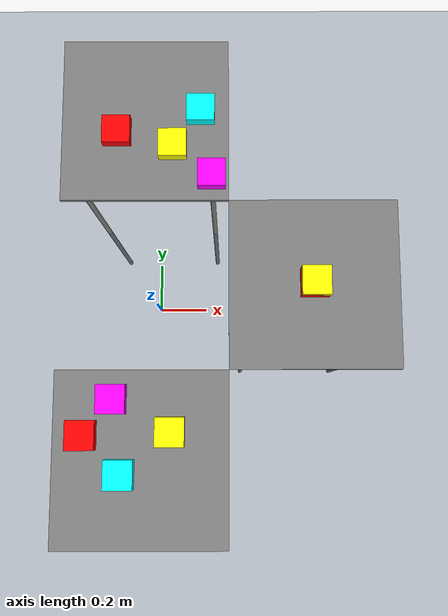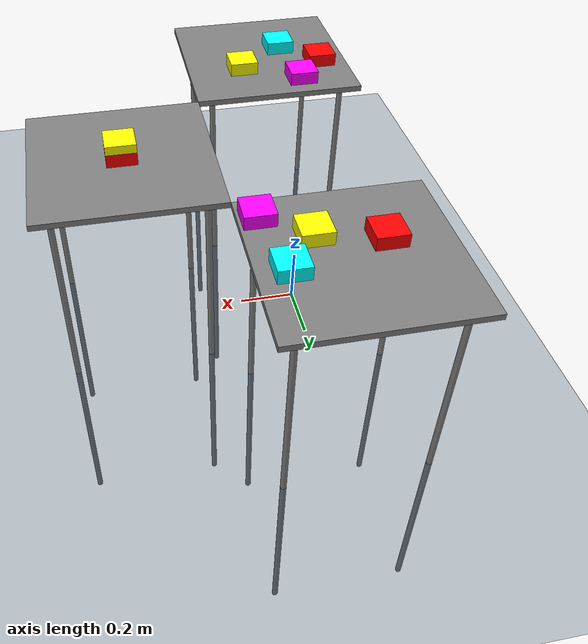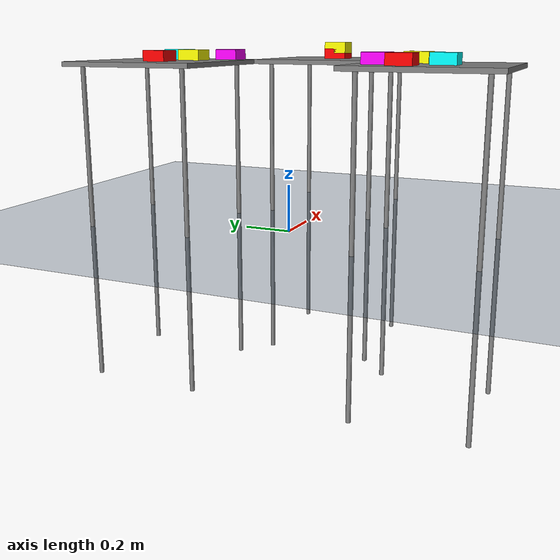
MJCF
<mujoco model="tableworld">
    <compiler eulerseq="XYZ"/>
    <statistic center="0.3 0 0.4" extent="0.8"/>

    <visual>
        <headlight diffuse="0.6 0.6 0.6" ambient="0.1 0.1 0.1" specular="0 0 0"/>
        <rgba haze="0.15 0.25 0.35 1"/>
        <global azimuth="120" elevation="-20"/>
    </visual>

    <asset>
        <texture type="skybox" builtin="gradient" rgb1="0.3 0.5 0.7" rgb2="0 0 0" width="512" height="3072"/>
        <texture type="2d" name="groundplane" builtin="checker" mark="edge" rgb1="0.2 0.3 0.4" rgb2="0.1 0.2 0.3"
                 markrgb="0.8 0.8 0.8" width="300" height="300"/>
        <material name="groundplane" texture="groundplane" texuniform="true" texrepeat="5 5" reflectance="0.2"/>

    </asset>

    <worldbody>
        <light pos="0 0 1.5" dir="0 0 -1" directional="true"/>
        <geom name="floor" pos="0.0 0.0 0.0" size="0 0 0.05" type="plane" material="groundplane"/>

        <body name="table_left" pos="0.0 -0.6 0">
            <geom name="table_left_top" type="box" size=".30 .30 .01" pos="0 0 .7"/>
            <geom name="table_left_leg_1" type="cylinder" size=".01 .7" pos=".24 -.24 -.0" euler="0 0 0"/>
            <geom name="table_left_leg_2" type="cylinder" size=".01 .7" pos=".24 .24 -.0" euler="0 0 0"/>
            <geom name="table_left_leg_3" type="cylinder" size=".01 .7" pos="-.24 -.24 -.0" euler="0 0 0"/>
            <geom name="table_left_leg_4" type="cylinder" size=".01 .7" pos="-.24 .24 -.0" euler="0 0 0"/>
        </body>

        <body name="table_right" pos="0 0.6 0">
            <geom name="table_right_top" type="box" size=".30 .30 .01" pos="0 0 .7"/>
            <geom name="table_right_leg_1" type="cylinder" size=".01 .7" pos=".24 -.24 -.0" euler="0 0 0"/>
            <geom name="table_right_leg_2" type="cylinder" size=".01 .7" pos=".24 .24 -.0" euler="0 0 0"/>
            <geom name="table_right_leg_3" type="cylinder" size=".01 .7" pos="-.24 -.24 -.0" euler="0 0 0"/>
            <geom name="table_right_leg_4" type="cylinder" size=".01 .7" pos="-.24 .24 -.0" euler="0 0 0"/>
        </body>

        <body name="table_front" pos="0.6 0 0">
            <geom name="table_front_top" type="box" size=".30 .30 .01" pos="0 0 .7"/>
            <geom name="table_front_leg_1" type="cylinder" size=".01 .7" pos=".24 -.24 -.0" euler="0 0 0"/>
            <geom name="table_front_leg_2" type="cylinder" size=".01 .7" pos=".24 .24 -.0" euler="0 0 0"/>
            <geom name="table_front_leg_3" type="cylinder" size=".01 .7" pos="-.24 -.24 -.0" euler="0 0 0"/>
            <geom name="table_front_leg_4" type="cylinder" size=".01 .7" pos="-.24 .24 -.0" euler="0 0 0"/>
        </body>

<!--        table right:     -->
        <body name="block 1 red" pos="-0.1 0.55 0.73">
            <freejoint name="block 1 red" />
            <geom type="box" size=".05 .05 .025" rgba="1 0 0 1"/>
        </body>

        <body name="block 2 yellow" pos="0.1 0.50 0.73">
            <freejoint name="block 2 yellow"/>
            <geom type="box" size=".05 .05 .025" rgba="1 1 0 1"/>
        </body>

        <body name="block 3 cyan" pos="0.2 0.63 0.73">
            <freejoint name="block 3 cyan"/>
            <geom type="box" size=".05 .05 .025" rgba="0 1 1 1"/>
        </body>

        <body name="block 4 purple" pos="0.24 0.39 0.73">
            <freejoint name="block 4 purple"/>
            <geom type="box" size=".05 .05 .025" rgba="1 0 1 1"/>
        </body>

<!--        table left   -->

        <body name="block 5 red" pos="-0.2 -0.52 0.73">
            <freejoint name="block 5 red"/>
            <geom type="box" size=".05 .05 .025" rgba="1 0 0 1"/>
        </body>

        <body name="block 6 yellow" pos="0.1 -0.51 0.73">
            <freejoint name="block 6 yellow"/>
            <geom type="box" size=".05 .05 .025" rgba="1 1 0 1"/>
        </body>

        <body name="block 7 cyan" pos="-0.07 -0.65 0.73">
            <freejoint name="block 7 cyan"/>
            <geom type="box" size=".05 .05 .025" rgba="0 1 1 1"/>
        </body>

        <body name="block 8 purple" pos="-0.1 -0.40 0.73">
            <freejoint name="block 8 purple"/>
            <geom type="box" size=".05 .05 .025" rgba="1 0 1 1"/>
        </body>

<!--        table front   -->
        <body name="block 9 red" pos="0.6 0 0.73">
            <freejoint name="block 9 red"/>
            <geom type="box" size=".05 .05 .025" rgba="1 0 0 1"/>
        </body>

        <body name="block 10 yellow" pos="0.6 0 0.76">
            <freejoint name="block 10 yellow"/>
            <geom type="box" size=".05 .05 .025" rgba="1 1 0 1"/>
        </body>

        <camera name="top-right" pos="2.5 1.2 2.5" euler="1 0 2"/>

    </worldbody>

</mujoco>
